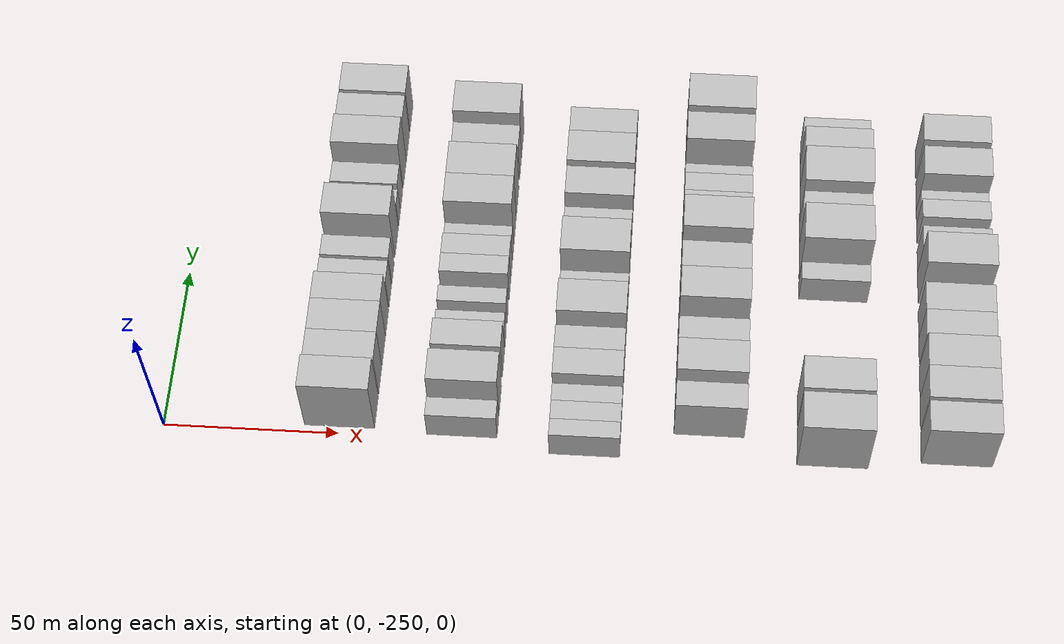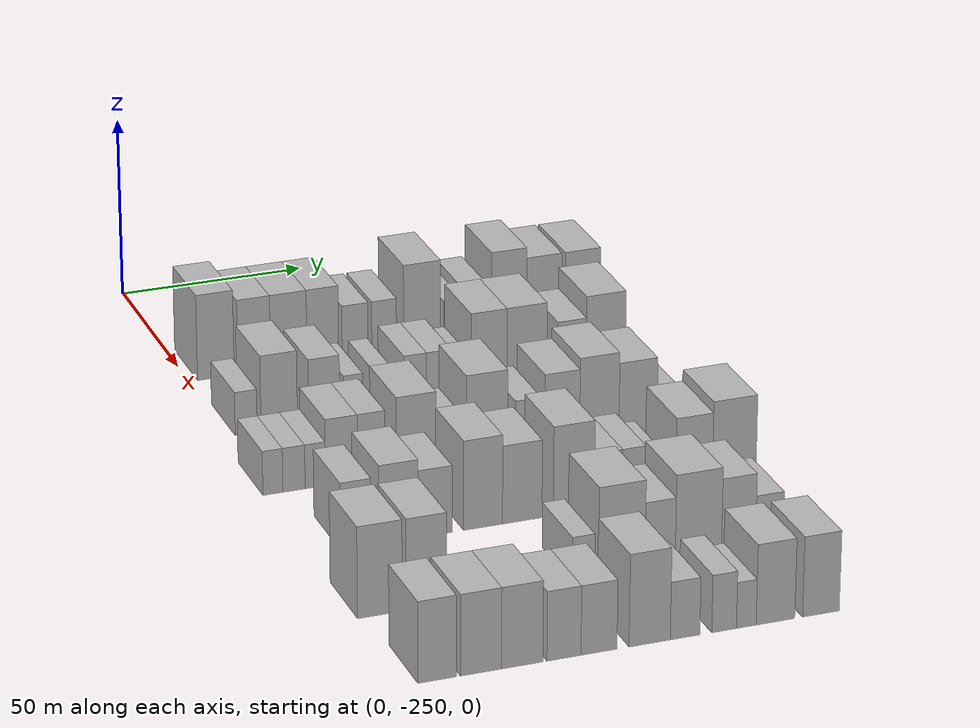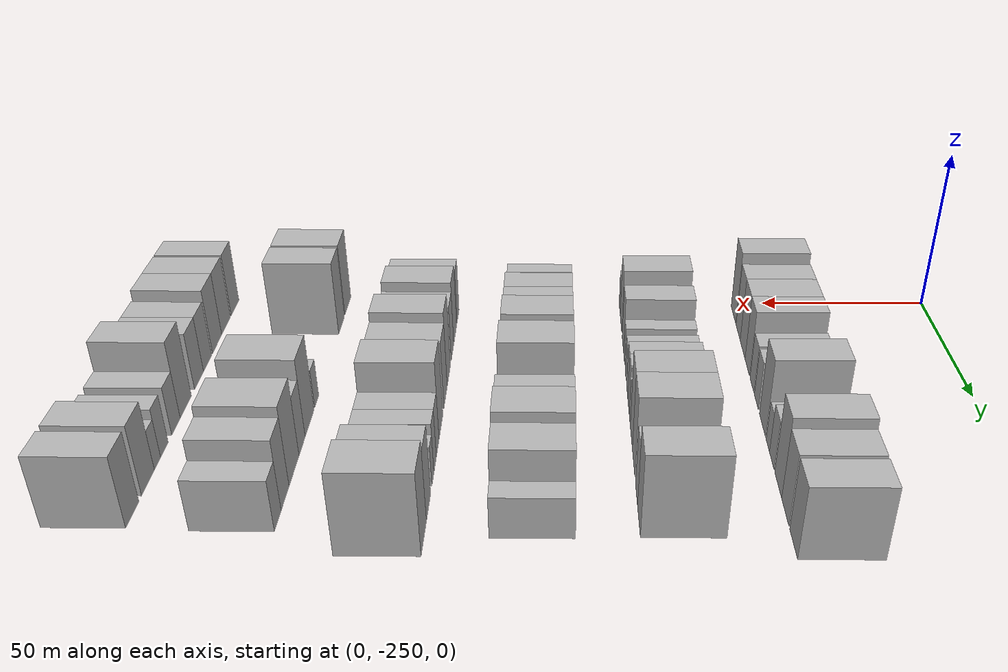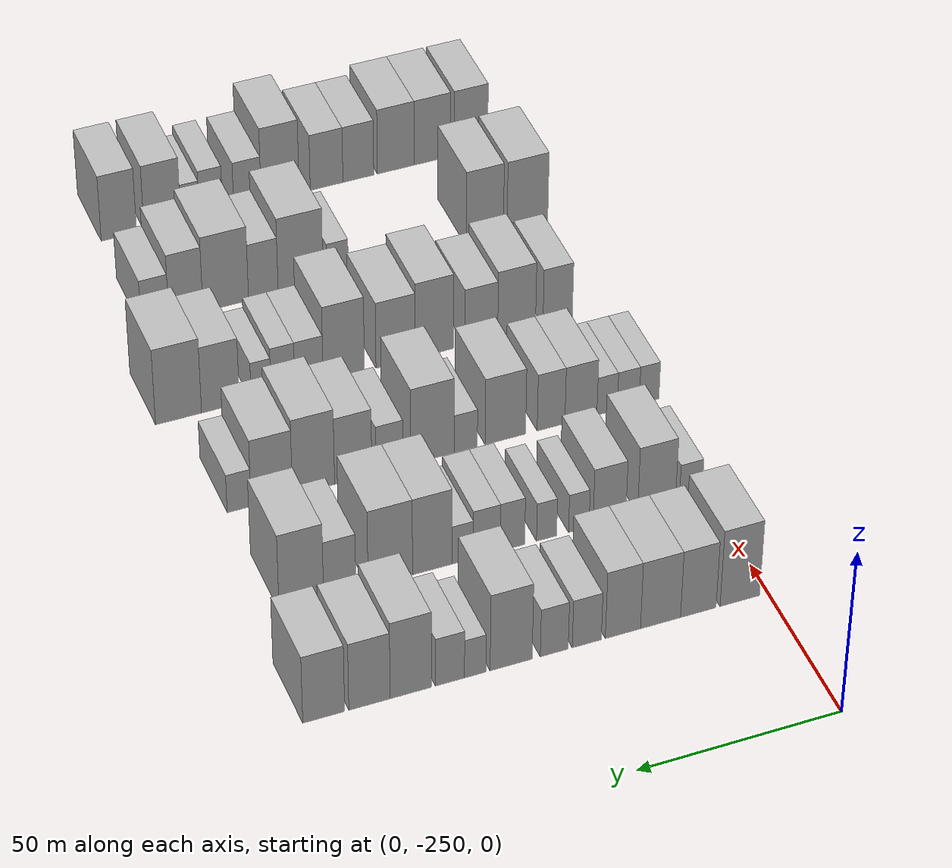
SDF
<sdf version="1.6">
 <world name="default">
  <model name="building_27">
   <static>1</static>
   <pose>50.0000 -242.8196 0 0.000000 0.000000 0.000000</pose>
   <link name="link">
    <pose>0 0 12.00 0 0 0</pose>
    <collision name="collision"><geometry><box><size>20.0000 9.9284 24.0000</size></box></geometry></collision>
    <visual name="visual">
     <cast_shadows>0</cast_shadows>
     <geometry><box><size>20.0000 9.9284 24.0000</size></box></geometry>
     <material>
      <script>
       <uri>model://HANNAS_wall/materials/scripts</uri>
       <uri>model://HANNAS_wall/materials/textures</uri>
       <name>vrc/HANNAS_wall</name>
      </script>
     </material>
    </visual>
   </link>
  </model>
  <model name="building_28">
   <static>1</static>
   <pose>50.0000 -232.4057 0 0.000000 0.000000 0.000000</pose>
   <link name="link">
    <pose>0 0 10.50 0 0 0</pose>
    <collision name="collision"><geometry><box><size>20.0000 8.8994 21.0000</size></box></geometry></collision>
    <visual name="visual">
     <cast_shadows>0</cast_shadows>
     <geometry><box><size>20.0000 8.8994 21.0000</size></box></geometry>
     <material>
      <script>
       <uri>model://HANNAS_wall/materials/scripts</uri>
       <uri>model://HANNAS_wall/materials/textures</uri>
       <name>vrc/HANNAS_wall</name>
      </script>
     </material>
    </visual>
   </link>
  </model>
  <model name="building_29">
   <static>1</static>
   <pose>50.0000 -222.9685 0 0.000000 0.000000 0.000000</pose>
   <link name="link">
    <pose>0 0 10.50 0 0 0</pose>
    <collision name="collision"><geometry><box><size>20.0000 9.9748 21.0000</size></box></geometry></collision>
    <visual name="visual">
     <cast_shadows>0</cast_shadows>
     <geometry><box><size>20.0000 9.9748 21.0000</size></box></geometry>
     <material>
      <script>
       <uri>model://HANNAS_wall/materials/scripts</uri>
       <uri>model://HANNAS_wall/materials/textures</uri>
       <name>vrc/HANNAS_wall</name>
      </script>
     </material>
    </visual>
   </link>
  </model>
  <model name="building_30">
   <static>1</static>
   <pose>50.0000 -213.6260 0 0.000000 0.000000 0.000000</pose>
   <link name="link">
    <pose>0 0 10.50 0 0 0</pose>
    <collision name="collision"><geometry><box><size>20.0000 8.7103 21.0000</size></box></geometry></collision>
    <visual name="visual">
     <cast_shadows>0</cast_shadows>
     <geometry><box><size>20.0000 8.7103 21.0000</size></box></geometry>
     <material>
      <script>
       <uri>model://HANNAS_wall/materials/scripts</uri>
       <uri>model://HANNAS_wall/materials/textures</uri>
       <name>vrc/HANNAS_wall</name>
      </script>
     </material>
    </visual>
   </link>
  </model>
  <model name="building_31">
   <static>1</static>
   <pose>50.0000 -204.6919 0 0.000000 0.000000 0.000000</pose>
   <link name="link">
    <pose>0 0 7.50 0 0 0</pose>
    <collision name="collision"><geometry><box><size>20.0000 7.1578 15.0000</size></box></geometry></collision>
    <visual name="visual">
     <cast_shadows>0</cast_shadows>
     <geometry><box><size>20.0000 7.1578 15.0000</size></box></geometry>
     <material>
      <script>
       <uri>model://HANNAS_wall/materials/scripts</uri>
       <uri>model://HANNAS_wall/materials/textures</uri>
       <name>vrc/HANNAS_wall</name>
      </script>
     </material>
    </visual>
   </link>
  </model>
  <model name="building_32">
   <static>1</static>
   <pose>50.0000 -196.6961 0 0.000000 0.000000 0.000000</pose>
   <link name="link">
    <pose>0 0 7.50 0 0 0</pose>
    <collision name="collision"><geometry><box><size>20.0000 6.8339 15.0000</size></box></geometry></collision>
    <visual name="visual">
     <cast_shadows>0</cast_shadows>
     <geometry><box><size>20.0000 6.8339 15.0000</size></box></geometry>
     <material>
      <script>
       <uri>model://HANNAS_wall/materials/scripts</uri>
       <uri>model://HANNAS_wall/materials/textures</uri>
       <name>vrc/HANNAS_wall</name>
      </script>
     </material>
    </visual>
   </link>
  </model>
  <model name="building_33">
   <static>1</static>
   <pose>50.0000 -186.1568 0 0.000000 0.000000 0.000000</pose>
   <link name="link">
    <pose>0 0 12.00 0 0 0</pose>
    <collision name="collision"><geometry><box><size>20.0000 10.2447 24.0000</size></box></geometry></collision>
    <visual name="visual">
     <cast_shadows>0</cast_shadows>
     <geometry><box><size>20.0000 10.2447 24.0000</size></box></geometry>
     <material>
      <script>
       <uri>model://HANNAS_wall/materials/scripts</uri>
       <uri>model://HANNAS_wall/materials/textures</uri>
       <name>vrc/HANNAS_wall</name>
      </script>
     </material>
    </visual>
   </link>
  </model>
  <model name="building_34">
   <static>1</static>
   <pose>50.0000 -177.4231 0 0.000000 0.000000 0.000000</pose>
   <link name="link">
    <pose>0 0 6.00 0 0 0</pose>
    <collision name="collision"><geometry><box><size>20.0000 5.2226 12.0000</size></box></geometry></collision>
    <visual name="visual">
     <cast_shadows>0</cast_shadows>
     <geometry><box><size>20.0000 5.2226 12.0000</size></box></geometry>
     <material>
      <script>
       <uri>model://HANNAS_wall/materials/scripts</uri>
       <uri>model://HANNAS_wall/materials/textures</uri>
       <name>vrc/HANNAS_wall</name>
      </script>
     </material>
    </visual>
   </link>
  </model>
  <model name="building_35">
   <static>1</static>
   <pose>50.0000 -171.3070 0 0.000000 0.000000 0.000000</pose>
   <link name="link">
    <pose>0 0 7.50 0 0 0</pose>
    <collision name="collision"><geometry><box><size>20.0000 7.0096 15.0000</size></box></geometry></collision>
    <visual name="visual">
     <cast_shadows>0</cast_shadows>
     <geometry><box><size>20.0000 7.0096 15.0000</size></box></geometry>
     <material>
      <script>
       <uri>model://HANNAS_wall/materials/scripts</uri>
       <uri>model://HANNAS_wall/materials/textures</uri>
       <name>vrc/HANNAS_wall</name>
      </script>
     </material>
    </visual>
   </link>
  </model>
  <model name="building_36">
   <static>1</static>
   <pose>50.0000 -161.8461 0 0.000000 0.000000 0.000000</pose>
   <link name="link">
    <pose>0 0 12.00 0 0 0</pose>
    <collision name="collision"><geometry><box><size>20.0000 9.9123 24.0000</size></box></geometry></collision>
    <visual name="visual">
     <cast_shadows>0</cast_shadows>
     <geometry><box><size>20.0000 9.9123 24.0000</size></box></geometry>
     <material>
      <script>
       <uri>model://HANNAS_wall/materials/scripts</uri>
       <uri>model://HANNAS_wall/materials/textures</uri>
       <name>vrc/HANNAS_wall</name>
      </script>
     </material>
    </visual>
   </link>
  </model>
  <model name="building_37">
   <static>1</static>
   <pose>50.0000 -151.9601 0 0.000000 0.000000 0.000000</pose>
   <link name="link">
    <pose>0 0 10.50 0 0 0</pose>
    <collision name="collision"><geometry><box><size>20.0000 9.8596 21.0000</size></box></geometry></collision>
    <visual name="visual">
     <cast_shadows>0</cast_shadows>
     <geometry><box><size>20.0000 9.8596 21.0000</size></box></geometry>
     <material>
      <script>
       <uri>model://HANNAS_wall/materials/scripts</uri>
       <uri>model://HANNAS_wall/materials/textures</uri>
       <name>vrc/HANNAS_wall</name>
      </script>
     </material>
    </visual>
   </link>
  </model>
  <model name="building_38">
   <static>1</static>
   <pose>50.0000 -141.0525 0 0.000000 0.000000 0.000000</pose>
   <link name="link">
    <pose>0 0 10.50 0 0 0</pose>
    <collision name="collision"><geometry><box><size>20.0000 9.9556 21.0000</size></box></geometry></collision>
    <visual name="visual">
     <cast_shadows>0</cast_shadows>
     <geometry><box><size>20.0000 9.9556 21.0000</size></box></geometry>
     <material>
      <script>
       <uri>model://HANNAS_wall/materials/scripts</uri>
       <uri>model://HANNAS_wall/materials/textures</uri>
       <name>vrc/HANNAS_wall</name>
      </script>
     </material>
    </visual>
   </link>
  </model>
  <model name="building_150">
   <static>1</static>
   <pose>85.0000 -245.8248 0 0.000000 0.000000 0.000000</pose>
   <link name="link">
    <pose>0 0 6.00 0 0 0</pose>
    <collision name="collision"><geometry><box><size>20.0000 5.8181 12.0000</size></box></geometry></collision>
    <visual name="visual">
     <cast_shadows>0</cast_shadows>
     <geometry><box><size>20.0000 5.8181 12.0000</size></box></geometry>
     <material>
      <script>
       <uri>model://HANNAS_wall/materials/scripts</uri>
       <uri>model://HANNAS_wall/materials/textures</uri>
       <name>vrc/HANNAS_wall</name>
      </script>
     </material>
    </visual>
   </link>
  </model>
  <model name="building_151">
   <static>1</static>
   <pose>85.0000 -237.0635 0 0.000000 0.000000 0.000000</pose>
   <link name="link">
    <pose>0 0 10.50 0 0 0</pose>
    <collision name="collision"><geometry><box><size>20.0000 9.7045 21.0000</size></box></geometry></collision>
    <visual name="visual">
     <cast_shadows>0</cast_shadows>
     <geometry><box><size>20.0000 9.7045 21.0000</size></box></geometry>
     <material>
      <script>
       <uri>model://HANNAS_wall/materials/scripts</uri>
       <uri>model://HANNAS_wall/materials/textures</uri>
       <name>vrc/HANNAS_wall</name>
      </script>
     </material>
    </visual>
   </link>
  </model>
  <model name="building_152">
   <static>1</static>
   <pose>85.0000 -225.0335 0 0.000000 0.000000 0.000000</pose>
   <link name="link">
    <pose>0 0 9.00 0 0 0</pose>
    <collision name="collision"><geometry><box><size>20.0000 8.3554 18.0000</size></box></geometry></collision>
    <visual name="visual">
     <cast_shadows>0</cast_shadows>
     <geometry><box><size>20.0000 8.3554 18.0000</size></box></geometry>
     <material>
      <script>
       <uri>model://HANNAS_wall/materials/scripts</uri>
       <uri>model://HANNAS_wall/materials/textures</uri>
       <name>vrc/HANNAS_wall</name>
      </script>
     </material>
    </visual>
   </link>
  </model>
  <model name="building_153">
   <static>1</static>
   <pose>85.0000 -217.2545 0 0.000000 0.000000 0.000000</pose>
   <link name="link">
    <pose>0 0 6.00 0 0 0</pose>
    <collision name="collision"><geometry><box><size>20.0000 5.2027 12.0000</size></box></geometry></collision>
    <visual name="visual">
     <cast_shadows>0</cast_shadows>
     <geometry><box><size>20.0000 5.2027 12.0000</size></box></geometry>
     <material>
      <script>
       <uri>model://HANNAS_wall/materials/scripts</uri>
       <uri>model://HANNAS_wall/materials/textures</uri>
       <name>vrc/HANNAS_wall</name>
      </script>
     </material>
    </visual>
   </link>
  </model>
  <model name="building_154">
   <static>1</static>
   <pose>85.0000 -209.1103 0 0.000000 0.000000 0.000000</pose>
   <link name="link">
    <pose>0 0 6.00 0 0 0</pose>
    <collision name="collision"><geometry><box><size>20.0000 5.0857 12.0000</size></box></geometry></collision>
    <visual name="visual">
     <cast_shadows>0</cast_shadows>
     <geometry><box><size>20.0000 5.0857 12.0000</size></box></geometry>
     <material>
      <script>
       <uri>model://HANNAS_wall/materials/scripts</uri>
       <uri>model://HANNAS_wall/materials/textures</uri>
       <name>vrc/HANNAS_wall</name>
      </script>
     </material>
    </visual>
   </link>
  </model>
  <model name="building_155">
   <static>1</static>
   <pose>85.0000 -200.5043 0 0.000000 0.000000 0.000000</pose>
   <link name="link">
    <pose>0 0 7.50 0 0 0</pose>
    <collision name="collision"><geometry><box><size>20.0000 6.1261 15.0000</size></box></geometry></collision>
    <visual name="visual">
     <cast_shadows>0</cast_shadows>
     <geometry><box><size>20.0000 6.1261 15.0000</size></box></geometry>
     <material>
      <script>
       <uri>model://HANNAS_wall/materials/scripts</uri>
       <uri>model://HANNAS_wall/materials/textures</uri>
       <name>vrc/HANNAS_wall</name>
      </script>
     </material>
    </visual>
   </link>
  </model>
  <model name="building_156">
   <static>1</static>
   <pose>85.0000 -194.0651 0 0.000000 0.000000 0.000000</pose>
   <link name="link">
    <pose>0 0 7.50 0 0 0</pose>
    <collision name="collision"><geometry><box><size>20.0000 6.7524 15.0000</size></box></geometry></collision>
    <visual name="visual">
     <cast_shadows>0</cast_shadows>
     <geometry><box><size>20.0000 6.7524 15.0000</size></box></geometry>
     <material>
      <script>
       <uri>model://HANNAS_wall/materials/scripts</uri>
       <uri>model://HANNAS_wall/materials/textures</uri>
       <name>vrc/HANNAS_wall</name>
      </script>
     </material>
    </visual>
   </link>
  </model>
  <model name="building_157">
   <static>1</static>
   <pose>85.0000 -188.0423 0 0.000000 0.000000 0.000000</pose>
   <link name="link">
    <pose>0 0 6.00 0 0 0</pose>
    <collision name="collision"><geometry><box><size>20.0000 5.2932 12.0000</size></box></geometry></collision>
    <visual name="visual">
     <cast_shadows>0</cast_shadows>
     <geometry><box><size>20.0000 5.2932 12.0000</size></box></geometry>
     <material>
      <script>
       <uri>model://HANNAS_wall/materials/scripts</uri>
       <uri>model://HANNAS_wall/materials/textures</uri>
       <name>vrc/HANNAS_wall</name>
      </script>
     </material>
    </visual>
   </link>
  </model>
  <model name="building_158">
   <static>1</static>
   <pose>85.0000 -180.4896 0 0.000000 0.000000 0.000000</pose>
   <link name="link">
    <pose>0 0 12.00 0 0 0</pose>
    <collision name="collision"><geometry><box><size>20.0000 9.8120 24.0000</size></box></geometry></collision>
    <visual name="visual">
     <cast_shadows>0</cast_shadows>
     <geometry><box><size>20.0000 9.8120 24.0000</size></box></geometry>
     <material>
      <script>
       <uri>model://HANNAS_wall/materials/scripts</uri>
       <uri>model://HANNAS_wall/materials/textures</uri>
       <name>vrc/HANNAS_wall</name>
      </script>
     </material>
    </visual>
   </link>
  </model>
  <model name="building_159">
   <static>1</static>
   <pose>85.0000 -170.1032 0 0.000000 0.000000 0.000000</pose>
   <link name="link">
    <pose>0 0 12.00 0 0 0</pose>
    <collision name="collision"><geometry><box><size>20.0000 10.9610 24.0000</size></box></geometry></collision>
    <visual name="visual">
     <cast_shadows>0</cast_shadows>
     <geometry><box><size>20.0000 10.9610 24.0000</size></box></geometry>
     <material>
      <script>
       <uri>model://HANNAS_wall/materials/scripts</uri>
       <uri>model://HANNAS_wall/materials/textures</uri>
       <name>vrc/HANNAS_wall</name>
      </script>
     </material>
    </visual>
   </link>
  </model>
  <model name="building_160">
   <static>1</static>
   <pose>85.0000 -157.6683 0 0.000000 0.000000 0.000000</pose>
   <link name="link">
    <pose>0 0 9.00 0 0 0</pose>
    <collision name="collision"><geometry><box><size>20.0000 7.9087 18.0000</size></box></geometry></collision>
    <visual name="visual">
     <cast_shadows>0</cast_shadows>
     <geometry><box><size>20.0000 7.9087 18.0000</size></box></geometry>
     <material>
      <script>
       <uri>model://HANNAS_wall/materials/scripts</uri>
       <uri>model://HANNAS_wall/materials/textures</uri>
       <name>vrc/HANNAS_wall</name>
      </script>
     </material>
    </visual>
   </link>
  </model>
  <model name="building_161">
   <static>1</static>
   <pose>85.0000 -148.2794 0 0.000000 0.000000 0.000000</pose>
   <link name="link">
    <pose>0 0 12.00 0 0 0</pose>
    <collision name="collision"><geometry><box><size>20.0000 10.8690 24.0000</size></box></geometry></collision>
    <visual name="visual">
     <cast_shadows>0</cast_shadows>
     <geometry><box><size>20.0000 10.8690 24.0000</size></box></geometry>
     <material>
      <script>
       <uri>model://HANNAS_wall/materials/scripts</uri>
       <uri>model://HANNAS_wall/materials/textures</uri>
       <name>vrc/HANNAS_wall</name>
      </script>
     </material>
    </visual>
   </link>
  </model>
  <model name="building_278">
   <static>1</static>
   <pose>120.0000 -250.2160 0 0.000000 0.000000 0.000000</pose>
   <link name="link">
    <pose>0 0 6.00 0 0 0</pose>
    <collision name="collision"><geometry><box><size>20.0000 5.1768 12.0000</size></box></geometry></collision>
    <visual name="visual">
     <cast_shadows>0</cast_shadows>
     <geometry><box><size>20.0000 5.1768 12.0000</size></box></geometry>
     <material>
      <script>
       <uri>model://HANNAS_wall/materials/scripts</uri>
       <uri>model://HANNAS_wall/materials/textures</uri>
       <name>vrc/HANNAS_wall</name>
      </script>
     </material>
    </visual>
   </link>
  </model>
  <model name="building_279">
   <static>1</static>
   <pose>120.0000 -244.7403 0 0.000000 0.000000 0.000000</pose>
   <link name="link">
    <pose>0 0 6.00 0 0 0</pose>
    <collision name="collision"><geometry><box><size>20.0000 5.7747 12.0000</size></box></geometry></collision>
    <visual name="visual">
     <cast_shadows>0</cast_shadows>
     <geometry><box><size>20.0000 5.7747 12.0000</size></box></geometry>
     <material>
      <script>
       <uri>model://HANNAS_wall/materials/scripts</uri>
       <uri>model://HANNAS_wall/materials/textures</uri>
       <name>vrc/HANNAS_wall</name>
      </script>
     </material>
    </visual>
   </link>
  </model>
  <model name="building_280">
   <static>1</static>
   <pose>120.0000 -239.1836 0 0.000000 0.000000 0.000000</pose>
   <link name="link">
    <pose>0 0 6.00 0 0 0</pose>
    <collision name="collision"><geometry><box><size>20.0000 5.3386 12.0000</size></box></geometry></collision>
    <visual name="visual">
     <cast_shadows>0</cast_shadows>
     <geometry><box><size>20.0000 5.3386 12.0000</size></box></geometry>
     <material>
      <script>
       <uri>model://HANNAS_wall/materials/scripts</uri>
       <uri>model://HANNAS_wall/materials/textures</uri>
       <name>vrc/HANNAS_wall</name>
      </script>
     </material>
    </visual>
   </link>
  </model>
  <model name="building_281">
   <static>1</static>
   <pose>120.0000 -232.3339 0 0.000000 0.000000 0.000000</pose>
   <link name="link">
    <pose>0 0 9.00 0 0 0</pose>
    <collision name="collision"><geometry><box><size>20.0000 8.3608 18.0000</size></box></geometry></collision>
    <visual name="visual">
     <cast_shadows>0</cast_shadows>
     <geometry><box><size>20.0000 8.3608 18.0000</size></box></geometry>
     <material>
      <script>
       <uri>model://HANNAS_wall/materials/scripts</uri>
       <uri>model://HANNAS_wall/materials/textures</uri>
       <name>vrc/HANNAS_wall</name>
      </script>
     </material>
    </visual>
   </link>
  </model>
  <model name="building_282">
   <static>1</static>
   <pose>120.0000 -224.5510 0 0.000000 0.000000 0.000000</pose>
   <link name="link">
    <pose>0 0 9.00 0 0 0</pose>
    <collision name="collision"><geometry><box><size>20.0000 7.2051 18.0000</size></box></geometry></collision>
    <visual name="visual">
     <cast_shadows>0</cast_shadows>
     <geometry><box><size>20.0000 7.2051 18.0000</size></box></geometry>
     <material>
      <script>
       <uri>model://HANNAS_wall/materials/scripts</uri>
       <uri>model://HANNAS_wall/materials/textures</uri>
       <name>vrc/HANNAS_wall</name>
      </script>
     </material>
    </visual>
   </link>
  </model>
  <model name="building_283">
   <static>1</static>
   <pose>120.0000 -212.7226 0 0.000000 0.000000 0.000000</pose>
   <link name="link">
    <pose>0 0 10.50 0 0 0</pose>
    <collision name="collision"><geometry><box><size>20.0000 10.4516 21.0000</size></box></geometry></collision>
    <visual name="visual">
     <cast_shadows>0</cast_shadows>
     <geometry><box><size>20.0000 10.4516 21.0000</size></box></geometry>
     <material>
      <script>
       <uri>model://HANNAS_wall/materials/scripts</uri>
       <uri>model://HANNAS_wall/materials/textures</uri>
       <name>vrc/HANNAS_wall</name>
      </script>
     </material>
    </visual>
   </link>
  </model>
  <model name="building_284">
   <static>1</static>
   <pose>120.0000 -202.5044 0 0.000000 0.000000 0.000000</pose>
   <link name="link">
    <pose>0 0 6.00 0 0 0</pose>
    <collision name="collision"><geometry><box><size>20.0000 5.9849 12.0000</size></box></geometry></collision>
    <visual name="visual">
     <cast_shadows>0</cast_shadows>
     <geometry><box><size>20.0000 5.9849 12.0000</size></box></geometry>
     <material>
      <script>
       <uri>model://HANNAS_wall/materials/scripts</uri>
       <uri>model://HANNAS_wall/materials/textures</uri>
       <name>vrc/HANNAS_wall</name>
      </script>
     </material>
    </visual>
   </link>
  </model>
  <model name="building_285">
   <static>1</static>
   <pose>120.0000 -193.9816 0 0.000000 0.000000 0.000000</pose>
   <link name="link">
    <pose>0 0 12.00 0 0 0</pose>
    <collision name="collision"><geometry><box><size>20.0000 11.0606 24.0000</size></box></geometry></collision>
    <visual name="visual">
     <cast_shadows>0</cast_shadows>
     <geometry><box><size>20.0000 11.0606 24.0000</size></box></geometry>
     <material>
      <script>
       <uri>model://HANNAS_wall/materials/scripts</uri>
       <uri>model://HANNAS_wall/materials/textures</uri>
       <name>vrc/HANNAS_wall</name>
      </script>
     </material>
    </visual>
   </link>
  </model>
  <model name="building_286">
   <static>1</static>
   <pose>120.0000 -183.0088 0 0.000000 0.000000 0.000000</pose>
   <link name="link">
    <pose>0 0 7.50 0 0 0</pose>
    <collision name="collision"><geometry><box><size>20.0000 6.8851 15.0000</size></box></geometry></collision>
    <visual name="visual">
     <cast_shadows>0</cast_shadows>
     <geometry><box><size>20.0000 6.8851 15.0000</size></box></geometry>
     <material>
      <script>
       <uri>model://HANNAS_wall/materials/scripts</uri>
       <uri>model://HANNAS_wall/materials/textures</uri>
       <name>vrc/HANNAS_wall</name>
      </script>
     </material>
    </visual>
   </link>
  </model>
  <model name="building_287">
   <static>1</static>
   <pose>120.0000 -173.8642 0 0.000000 0.000000 0.000000</pose>
   <link name="link">
    <pose>0 0 10.50 0 0 0</pose>
    <collision name="collision"><geometry><box><size>20.0000 9.4040 21.0000</size></box></geometry></collision>
    <visual name="visual">
     <cast_shadows>0</cast_shadows>
     <geometry><box><size>20.0000 9.4040 21.0000</size></box></geometry>
     <material>
      <script>
       <uri>model://HANNAS_wall/materials/scripts</uri>
       <uri>model://HANNAS_wall/materials/textures</uri>
       <name>vrc/HANNAS_wall</name>
      </script>
     </material>
    </visual>
   </link>
  </model>
  <model name="building_288">
   <static>1</static>
   <pose>120.0000 -163.8618 0 0.000000 0.000000 0.000000</pose>
   <link name="link">
    <pose>0 0 12.00 0 0 0</pose>
    <collision name="collision"><geometry><box><size>20.0000 10.6009 24.0000</size></box></geometry></collision>
    <visual name="visual">
     <cast_shadows>0</cast_shadows>
     <geometry><box><size>20.0000 10.6009 24.0000</size></box></geometry>
     <material>
      <script>
       <uri>model://HANNAS_wall/materials/scripts</uri>
       <uri>model://HANNAS_wall/materials/textures</uri>
       <name>vrc/HANNAS_wall</name>
      </script>
     </material>
    </visual>
   </link>
  </model>
  <model name="building_289">
   <static>1</static>
   <pose>120.0000 -153.3975 0 0.000000 0.000000 0.000000</pose>
   <link name="link">
    <pose>0 0 10.50 0 0 0</pose>
    <collision name="collision"><geometry><box><size>20.0000 10.3276 21.0000</size></box></geometry></collision>
    <visual name="visual">
     <cast_shadows>0</cast_shadows>
     <geometry><box><size>20.0000 10.3276 21.0000</size></box></geometry>
     <material>
      <script>
       <uri>model://HANNAS_wall/materials/scripts</uri>
       <uri>model://HANNAS_wall/materials/textures</uri>
       <name>vrc/HANNAS_wall</name>
      </script>
     </material>
    </visual>
   </link>
  </model>
  <model name="building_290">
   <static>1</static>
   <pose>120.0000 -145.2440 0 0.000000 0.000000 0.000000</pose>
   <link name="link">
    <pose>0 0 6.00 0 0 0</pose>
    <collision name="collision"><geometry><box><size>20.0000 5.9795 12.0000</size></box></geometry></collision>
    <visual name="visual">
     <cast_shadows>0</cast_shadows>
     <geometry><box><size>20.0000 5.9795 12.0000</size></box></geometry>
     <material>
      <script>
       <uri>model://HANNAS_wall/materials/scripts</uri>
       <uri>model://HANNAS_wall/materials/textures</uri>
       <name>vrc/HANNAS_wall</name>
      </script>
     </material>
    </visual>
   </link>
  </model>
  <model name="building_400">
   <static>1</static>
   <pose>155.0000 -240.6426 0 0.000000 0.000000 0.000000</pose>
   <link name="link">
    <pose>0 0 9.00 0 0 0</pose>
    <collision name="collision"><geometry><box><size>20.0000 7.8437 18.0000</size></box></geometry></collision>
    <visual name="visual">
     <cast_shadows>0</cast_shadows>
     <geometry><box><size>20.0000 7.8437 18.0000</size></box></geometry>
     <material>
      <script>
       <uri>model://HANNAS_wall/materials/scripts</uri>
       <uri>model://HANNAS_wall/materials/textures</uri>
       <name>vrc/HANNAS_wall</name>
      </script>
     </material>
    </visual>
   </link>
  </model>
  <model name="building_401">
   <static>1</static>
   <pose>155.0000 -229.6948 0 0.000000 0.000000 0.000000</pose>
   <link name="link">
    <pose>0 0 10.50 0 0 0</pose>
    <collision name="collision"><geometry><box><size>20.0000 10.0518 21.0000</size></box></geometry></collision>
    <visual name="visual">
     <cast_shadows>0</cast_shadows>
     <geometry><box><size>20.0000 10.0518 21.0000</size></box></geometry>
     <material>
      <script>
       <uri>model://HANNAS_wall/materials/scripts</uri>
       <uri>model://HANNAS_wall/materials/textures</uri>
       <name>vrc/HANNAS_wall</name>
      </script>
     </material>
    </visual>
   </link>
  </model>
  <model name="building_402">
   <static>1</static>
   <pose>155.0000 -220.3279 0 0.000000 0.000000 0.000000</pose>
   <link name="link">
    <pose>0 0 9.00 0 0 0</pose>
    <collision name="collision"><geometry><box><size>20.0000 8.6821 18.0000</size></box></geometry></collision>
    <visual name="visual">
     <cast_shadows>0</cast_shadows>
     <geometry><box><size>20.0000 8.6821 18.0000</size></box></geometry>
     <material>
      <script>
       <uri>model://HANNAS_wall/materials/scripts</uri>
       <uri>model://HANNAS_wall/materials/textures</uri>
       <name>vrc/HANNAS_wall</name>
      </script>
     </material>
    </visual>
   </link>
  </model>
  <model name="building_403">
   <static>1</static>
   <pose>155.0000 -207.9523 0 0.000000 0.000000 0.000000</pose>
   <link name="link">
    <pose>0 0 12.00 0 0 0</pose>
    <collision name="collision"><geometry><box><size>20.0000 10.0691 24.0000</size></box></geometry></collision>
    <visual name="visual">
     <cast_shadows>0</cast_shadows>
     <geometry><box><size>20.0000 10.0691 24.0000</size></box></geometry>
     <material>
      <script>
       <uri>model://HANNAS_wall/materials/scripts</uri>
       <uri>model://HANNAS_wall/materials/textures</uri>
       <name>vrc/HANNAS_wall</name>
      </script>
     </material>
    </visual>
   </link>
  </model>
  <model name="building_404">
   <static>1</static>
   <pose>155.0000 -197.7935 0 0.000000 0.000000 0.000000</pose>
   <link name="link">
    <pose>0 0 10.50 0 0 0</pose>
    <collision name="collision"><geometry><box><size>20.0000 10.2485 21.0000</size></box></geometry></collision>
    <visual name="visual">
     <cast_shadows>0</cast_shadows>
     <geometry><box><size>20.0000 10.2485 21.0000</size></box></geometry>
     <material>
      <script>
       <uri>model://HANNAS_wall/materials/scripts</uri>
       <uri>model://HANNAS_wall/materials/textures</uri>
       <name>vrc/HANNAS_wall</name>
      </script>
     </material>
    </visual>
   </link>
  </model>
  <model name="building_405">
   <static>1</static>
   <pose>155.0000 -184.3172 0 0.000000 0.000000 0.000000</pose>
   <link name="link">
    <pose>0 0 12.00 0 0 0</pose>
    <collision name="collision"><geometry><box><size>20.0000 10.7041 24.0000</size></box></geometry></collision>
    <visual name="visual">
     <cast_shadows>0</cast_shadows>
     <geometry><box><size>20.0000 10.7041 24.0000</size></box></geometry>
     <material>
      <script>
       <uri>model://HANNAS_wall/materials/scripts</uri>
       <uri>model://HANNAS_wall/materials/textures</uri>
       <name>vrc/HANNAS_wall</name>
      </script>
     </material>
    </visual>
   </link>
  </model>
  <model name="building_406">
   <static>1</static>
   <pose>155.0000 -175.3044 0 0.000000 0.000000 0.000000</pose>
   <link name="link">
    <pose>0 0 7.50 0 0 0</pose>
    <collision name="collision"><geometry><box><size>20.0000 7.3215 15.0000</size></box></geometry></collision>
    <visual name="visual">
     <cast_shadows>0</cast_shadows>
     <geometry><box><size>20.0000 7.3215 15.0000</size></box></geometry>
     <material>
      <script>
       <uri>model://HANNAS_wall/materials/scripts</uri>
       <uri>model://HANNAS_wall/materials/textures</uri>
       <name>vrc/HANNAS_wall</name>
      </script>
     </material>
    </visual>
   </link>
  </model>
  <model name="building_407">
   <static>1</static>
   <pose>155.0000 -168.5745 0 0.000000 0.000000 0.000000</pose>
   <link name="link">
    <pose>0 0 7.50 0 0 0</pose>
    <collision name="collision"><geometry><box><size>20.0000 6.1383 15.0000</size></box></geometry></collision>
    <visual name="visual">
     <cast_shadows>0</cast_shadows>
     <geometry><box><size>20.0000 6.1383 15.0000</size></box></geometry>
     <material>
      <script>
       <uri>model://HANNAS_wall/materials/scripts</uri>
       <uri>model://HANNAS_wall/materials/textures</uri>
       <name>vrc/HANNAS_wall</name>
      </script>
     </material>
    </visual>
   </link>
  </model>
  <model name="building_408">
   <static>1</static>
   <pose>155.0000 -162.9601 0 0.000000 0.000000 0.000000</pose>
   <link name="link">
    <pose>0 0 6.00 0 0 0</pose>
    <collision name="collision"><geometry><box><size>20.0000 5.0905 12.0000</size></box></geometry></collision>
    <visual name="visual">
     <cast_shadows>0</cast_shadows>
     <geometry><box><size>20.0000 5.0905 12.0000</size></box></geometry>
     <material>
      <script>
       <uri>model://HANNAS_wall/materials/scripts</uri>
       <uri>model://HANNAS_wall/materials/textures</uri>
       <name>vrc/HANNAS_wall</name>
      </script>
     </material>
    </visual>
   </link>
  </model>
  <model name="building_409">
   <static>1</static>
   <pose>155.0000 -152.5664 0 0.000000 0.000000 0.000000</pose>
   <link name="link">
    <pose>0 0 10.50 0 0 0</pose>
    <collision name="collision"><geometry><box><size>20.0000 9.6969 21.0000</size></box></geometry></collision>
    <visual name="visual">
     <cast_shadows>0</cast_shadows>
     <geometry><box><size>20.0000 9.6969 21.0000</size></box></geometry>
     <material>
      <script>
       <uri>model://HANNAS_wall/materials/scripts</uri>
       <uri>model://HANNAS_wall/materials/textures</uri>
       <name>vrc/HANNAS_wall</name>
      </script>
     </material>
    </visual>
   </link>
  </model>
  <model name="building_410">
   <static>1</static>
   <pose>155.0000 -141.8720 0 0.000000 0.000000 0.000000</pose>
   <link name="link">
    <pose>0 0 12.00 0 0 0</pose>
    <collision name="collision"><geometry><box><size>20.0000 11.6918 24.0000</size></box></geometry></collision>
    <visual name="visual">
     <cast_shadows>0</cast_shadows>
     <geometry><box><size>20.0000 11.6918 24.0000</size></box></geometry>
     <material>
      <script>
       <uri>model://HANNAS_wall/materials/scripts</uri>
       <uri>model://HANNAS_wall/materials/textures</uri>
       <name>vrc/HANNAS_wall</name>
      </script>
     </material>
    </visual>
   </link>
  </model>
  <model name="building_525">
   <static>1</static>
   <pose>190.0000 -246.7005 0 0.000000 0.000000 0.000000</pose>
   <link name="link">
    <pose>0 0 12.00 0 0 0</pose>
    <collision name="collision"><geometry><box><size>20.0000 11.1205 24.0000</size></box></geometry></collision>
    <visual name="visual">
     <cast_shadows>0</cast_shadows>
     <geometry><box><size>20.0000 11.1205 24.0000</size></box></geometry>
     <material>
      <script>
       <uri>model://HANNAS_wall/materials/scripts</uri>
       <uri>model://HANNAS_wall/materials/textures</uri>
       <name>vrc/HANNAS_wall</name>
      </script>
     </material>
    </visual>
   </link>
  </model>
  <model name="building_526">
   <static>1</static>
   <pose>190.0000 -235.1070 0 0.000000 0.000000 0.000000</pose>
   <link name="link">
    <pose>0 0 12.00 0 0 0</pose>
    <collision name="collision"><geometry><box><size>20.0000 10.0665 24.0000</size></box></geometry></collision>
    <visual name="visual">
     <cast_shadows>0</cast_shadows>
     <geometry><box><size>20.0000 10.0665 24.0000</size></box></geometry>
     <material>
      <script>
       <uri>model://HANNAS_wall/materials/scripts</uri>
       <uri>model://HANNAS_wall/materials/textures</uri>
       <name>vrc/HANNAS_wall</name>
      </script>
     </material>
    </visual>
   </link>
  </model>
  <model name="building_527">
   <static>1</static>
   <pose>190.0000 -195.4752 0 0.000000 0.000000 0.000000</pose>
   <link name="link">
    <pose>0 0 6.00 0 0 0</pose>
    <collision name="collision"><geometry><box><size>20.0000 5.7323 12.0000</size></box></geometry></collision>
    <visual name="visual">
     <cast_shadows>0</cast_shadows>
     <geometry><box><size>20.0000 5.7323 12.0000</size></box></geometry>
     <material>
      <script>
       <uri>model://HANNAS_wall/materials/scripts</uri>
       <uri>model://HANNAS_wall/materials/textures</uri>
       <name>vrc/HANNAS_wall</name>
      </script>
     </material>
    </visual>
   </link>
  </model>
  <model name="building_528">
   <static>1</static>
   <pose>190.0000 -185.6544 0 0.000000 0.000000 0.000000</pose>
   <link name="link">
    <pose>0 0 12.00 0 0 0</pose>
    <collision name="collision"><geometry><box><size>20.0000 11.9094 24.0000</size></box></geometry></collision>
    <visual name="visual">
     <cast_shadows>0</cast_shadows>
     <geometry><box><size>20.0000 11.9094 24.0000</size></box></geometry>
     <material>
      <script>
       <uri>model://HANNAS_wall/materials/scripts</uri>
       <uri>model://HANNAS_wall/materials/textures</uri>
       <name>vrc/HANNAS_wall</name>
      </script>
     </material>
    </visual>
   </link>
  </model>
  <model name="building_529">
   <static>1</static>
   <pose>190.0000 -175.7960 0 0.000000 0.000000 0.000000</pose>
   <link name="link">
    <pose>0 0 9.00 0 0 0</pose>
    <collision name="collision"><geometry><box><size>20.0000 7.8074 18.0000</size></box></geometry></collision>
    <visual name="visual">
     <cast_shadows>0</cast_shadows>
     <geometry><box><size>20.0000 7.8074 18.0000</size></box></geometry>
     <material>
      <script>
       <uri>model://HANNAS_wall/materials/scripts</uri>
       <uri>model://HANNAS_wall/materials/textures</uri>
       <name>vrc/HANNAS_wall</name>
      </script>
     </material>
    </visual>
   </link>
  </model>
  <model name="building_530">
   <static>1</static>
   <pose>190.0000 -165.9094 0 0.000000 0.000000 0.000000</pose>
   <link name="link">
    <pose>0 0 12.00 0 0 0</pose>
    <collision name="collision"><geometry><box><size>20.0000 11.9658 24.0000</size></box></geometry></collision>
    <visual name="visual">
     <cast_shadows>0</cast_shadows>
     <geometry><box><size>20.0000 11.9658 24.0000</size></box></geometry>
     <material>
      <script>
       <uri>model://HANNAS_wall/materials/scripts</uri>
       <uri>model://HANNAS_wall/materials/textures</uri>
       <name>vrc/HANNAS_wall</name>
      </script>
     </material>
    </visual>
   </link>
  </model>
  <model name="building_531">
   <static>1</static>
   <pose>190.0000 -155.4844 0 0.000000 0.000000 0.000000</pose>
   <link name="link">
    <pose>0 0 10.50 0 0 0</pose>
    <collision name="collision"><geometry><box><size>20.0000 8.8841 21.0000</size></box></geometry></collision>
    <visual name="visual">
     <cast_shadows>0</cast_shadows>
     <geometry><box><size>20.0000 8.8841 21.0000</size></box></geometry>
     <material>
      <script>
       <uri>model://HANNAS_wall/materials/scripts</uri>
       <uri>model://HANNAS_wall/materials/textures</uri>
       <name>vrc/HANNAS_wall</name>
      </script>
     </material>
    </visual>
   </link>
  </model>
  <model name="building_532">
   <static>1</static>
   <pose>190.0000 -147.4283 0 0.000000 0.000000 0.000000</pose>
   <link name="link">
    <pose>0 0 7.50 0 0 0</pose>
    <collision name="collision"><geometry><box><size>20.0000 7.2282 15.0000</size></box></geometry></collision>
    <visual name="visual">
     <cast_shadows>0</cast_shadows>
     <geometry><box><size>20.0000 7.2282 15.0000</size></box></geometry>
     <material>
      <script>
       <uri>model://HANNAS_wall/materials/scripts</uri>
       <uri>model://HANNAS_wall/materials/textures</uri>
       <name>vrc/HANNAS_wall</name>
      </script>
     </material>
    </visual>
   </link>
  </model>
  <model name="building_652">
   <static>1</static>
   <pose>225.0000 -245.0529 0 0.000000 0.000000 0.000000</pose>
   <link name="link">
    <pose>0 0 10.50 0 0 0</pose>
    <collision name="collision"><geometry><box><size>20.0000 9.3506 21.0000</size></box></geometry></collision>
    <visual name="visual">
     <cast_shadows>0</cast_shadows>
     <geometry><box><size>20.0000 9.3506 21.0000</size></box></geometry>
     <material>
      <script>
       <uri>model://HANNAS_wall/materials/scripts</uri>
       <uri>model://HANNAS_wall/materials/textures</uri>
       <name>vrc/HANNAS_wall</name>
      </script>
     </material>
    </visual>
   </link>
  </model>
  <model name="building_653">
   <static>1</static>
   <pose>225.0000 -234.3406 0 0.000000 0.000000 0.000000</pose>
   <link name="link">
    <pose>0 0 10.50 0 0 0</pose>
    <collision name="collision"><geometry><box><size>20.0000 10.0740 21.0000</size></box></geometry></collision>
    <visual name="visual">
     <cast_shadows>0</cast_shadows>
     <geometry><box><size>20.0000 10.0740 21.0000</size></box></geometry>
     <material>
      <script>
       <uri>model://HANNAS_wall/materials/scripts</uri>
       <uri>model://HANNAS_wall/materials/textures</uri>
       <name>vrc/HANNAS_wall</name>
      </script>
     </material>
    </visual>
   </link>
  </model>
  <model name="building_654">
   <static>1</static>
   <pose>225.0000 -224.2305 0 0.000000 0.000000 0.000000</pose>
   <link name="link">
    <pose>0 0 10.50 0 0 0</pose>
    <collision name="collision"><geometry><box><size>20.0000 10.1464 21.0000</size></box></geometry></collision>
    <visual name="visual">
     <cast_shadows>0</cast_shadows>
     <geometry><box><size>20.0000 10.1464 21.0000</size></box></geometry>
     <material>
      <script>
       <uri>model://HANNAS_wall/materials/scripts</uri>
       <uri>model://HANNAS_wall/materials/textures</uri>
       <name>vrc/HANNAS_wall</name>
      </script>
     </material>
    </visual>
   </link>
  </model>
  <model name="building_655">
   <static>1</static>
   <pose>225.0000 -213.9282 0 0.000000 0.000000 0.000000</pose>
   <link name="link">
    <pose>0 0 9.00 0 0 0</pose>
    <collision name="collision"><geometry><box><size>20.0000 8.4582 18.0000</size></box></geometry></collision>
    <visual name="visual">
     <cast_shadows>0</cast_shadows>
     <geometry><box><size>20.0000 8.4582 18.0000</size></box></geometry>
     <material>
      <script>
       <uri>model://HANNAS_wall/materials/scripts</uri>
       <uri>model://HANNAS_wall/materials/textures</uri>
       <name>vrc/HANNAS_wall</name>
      </script>
     </material>
    </visual>
   </link>
  </model>
  <model name="building_656">
   <static>1</static>
   <pose>225.0000 -205.2360 0 0.000000 0.000000 0.000000</pose>
   <link name="link">
    <pose>0 0 9.00 0 0 0</pose>
    <collision name="collision"><geometry><box><size>20.0000 8.9261 18.0000</size></box></geometry></collision>
    <visual name="visual">
     <cast_shadows>0</cast_shadows>
     <geometry><box><size>20.0000 8.9261 18.0000</size></box></geometry>
     <material>
      <script>
       <uri>model://HANNAS_wall/materials/scripts</uri>
       <uri>model://HANNAS_wall/materials/textures</uri>
       <name>vrc/HANNAS_wall</name>
      </script>
     </material>
    </visual>
   </link>
  </model>
  <model name="building_657">
   <static>1</static>
   <pose>225.0000 -192.6225 0 0.000000 0.000000 0.000000</pose>
   <link name="link">
    <pose>0 0 12.00 0 0 0</pose>
    <collision name="collision"><geometry><box><size>20.0000 10.3009 24.0000</size></box></geometry></collision>
    <visual name="visual">
     <cast_shadows>0</cast_shadows>
     <geometry><box><size>20.0000 10.3009 24.0000</size></box></geometry>
     <material>
      <script>
       <uri>model://HANNAS_wall/materials/scripts</uri>
       <uri>model://HANNAS_wall/materials/textures</uri>
       <name>vrc/HANNAS_wall</name>
      </script>
     </material>
    </visual>
   </link>
  </model>
  <model name="building_658">
   <static>1</static>
   <pose>225.0000 -183.7502 0 0.000000 0.000000 0.000000</pose>
   <link name="link">
    <pose>0 0 7.50 0 0 0</pose>
    <collision name="collision"><geometry><box><size>20.0000 7.4439 15.0000</size></box></geometry></collision>
    <visual name="visual">
     <cast_shadows>0</cast_shadows>
     <geometry><box><size>20.0000 7.4439 15.0000</size></box></geometry>
     <material>
      <script>
       <uri>model://HANNAS_wall/materials/scripts</uri>
       <uri>model://HANNAS_wall/materials/textures</uri>
       <name>vrc/HANNAS_wall</name>
      </script>
     </material>
    </visual>
   </link>
  </model>
  <model name="building_659">
   <static>1</static>
   <pose>225.0000 -173.9074 0 0.000000 0.000000 0.000000</pose>
   <link name="link">
    <pose>0 0 7.50 0 0 0</pose>
    <collision name="collision"><geometry><box><size>20.0000 6.2417 15.0000</size></box></geometry></collision>
    <visual name="visual">
     <cast_shadows>0</cast_shadows>
     <geometry><box><size>20.0000 6.2417 15.0000</size></box></geometry>
     <material>
      <script>
       <uri>model://HANNAS_wall/materials/scripts</uri>
       <uri>model://HANNAS_wall/materials/textures</uri>
       <name>vrc/HANNAS_wall</name>
      </script>
     </material>
    </visual>
   </link>
  </model>
  <model name="building_660">
   <static>1</static>
   <pose>225.0000 -168.2911 0 0.000000 0.000000 0.000000</pose>
   <link name="link">
    <pose>0 0 6.00 0 0 0</pose>
    <collision name="collision"><geometry><box><size>20.0000 4.9908 12.0000</size></box></geometry></collision>
    <visual name="visual">
     <cast_shadows>0</cast_shadows>
     <geometry><box><size>20.0000 4.9908 12.0000</size></box></geometry>
     <material>
      <script>
       <uri>model://HANNAS_wall/materials/scripts</uri>
       <uri>model://HANNAS_wall/materials/textures</uri>
       <name>vrc/HANNAS_wall</name>
      </script>
     </material>
    </visual>
   </link>
  </model>
  <model name="building_661">
   <static>1</static>
   <pose>225.0000 -160.8840 0 0.000000 0.000000 0.000000</pose>
   <link name="link">
    <pose>0 0 10.50 0 0 0</pose>
    <collision name="collision"><geometry><box><size>20.0000 9.8235 21.0000</size></box></geometry></collision>
    <visual name="visual">
     <cast_shadows>0</cast_shadows>
     <geometry><box><size>20.0000 9.8235 21.0000</size></box></geometry>
     <material>
      <script>
       <uri>model://HANNAS_wall/materials/scripts</uri>
       <uri>model://HANNAS_wall/materials/textures</uri>
       <name>vrc/HANNAS_wall</name>
      </script>
     </material>
    </visual>
   </link>
  </model>
  <model name="building_662">
   <static>1</static>
   <pose>225.0000 -149.2778 0 0.000000 0.000000 0.000000</pose>
   <link name="link">
    <pose>0 0 10.50 0 0 0</pose>
    <collision name="collision"><geometry><box><size>20.0000 9.3889 21.0000</size></box></geometry></collision>
    <visual name="visual">
     <cast_shadows>0</cast_shadows>
     <geometry><box><size>20.0000 9.3889 21.0000</size></box></geometry>
     <material>
      <script>
       <uri>model://HANNAS_wall/materials/scripts</uri>
       <uri>model://HANNAS_wall/materials/textures</uri>
       <name>vrc/HANNAS_wall</name>
      </script>
     </material>
    </visual>
   </link>
  </model>
 </world>
</sdf>
